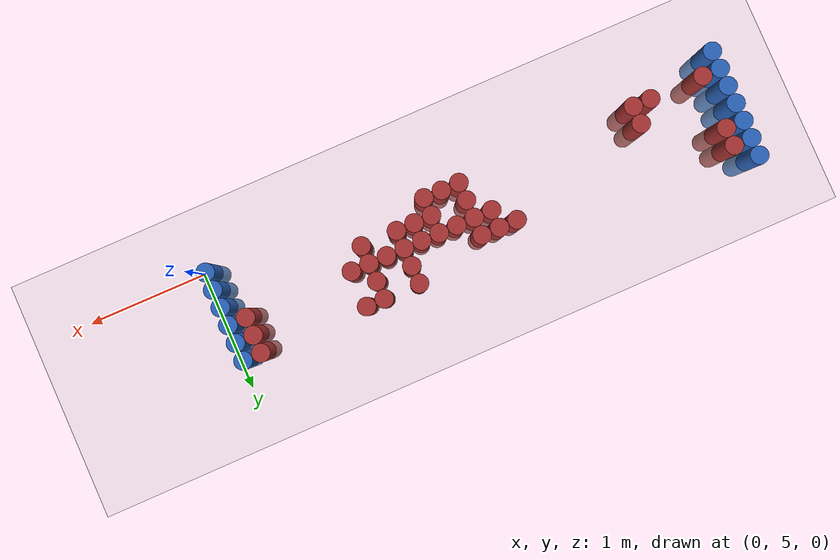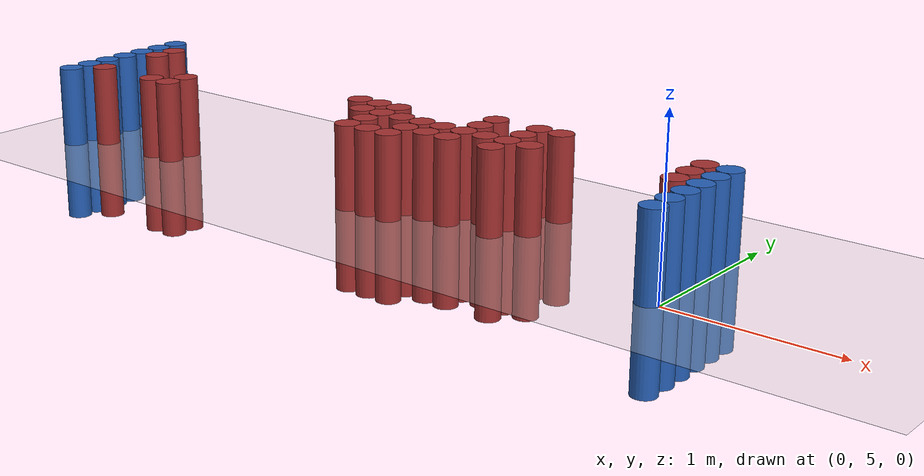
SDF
<sdf version="1.6">
 <world name="default">
  <model name="ground_plane">
   <static>1</static>
   <link name="link">
    <collision name="collision">
     <geometry><plane><normal>0 0 1</normal><size>100 100</size></plane></geometry>
     <surface><friction><ode><mu>100</mu><mu2>50</mu2></ode></friction></surface>
    </collision>
    <visual name="visual">
     <cast_shadows>0</cast_shadows>
     <geometry><plane><normal>0 0 1</normal><size>100 100</size></plane></geometry>
     <material>
      <script><uri>file://media/materials/scripts/gazebo.material</uri><name>Gazebo/Grey</name></script>
     </material>
    </visual>
   </link>
  </model>
  <model name="unit_cylinder_94">
   <static>1</static>
   <pose>-0.075000 5.025000 0.000000 0.000000 0.000000 0.000000</pose>
   <link name="link">
    <inertial>
     <mass>1</mass>
     <inertia><ixx>0.145833</ixx><ixy>0</ixy><ixz>0</ixz><iyy>0.145833</iyy><iyz>0</iyz><izz>0.125</izz></inertia>
    </inertial>
    <collision name="collision">
     <geometry><cylinder><radius>0.075000</radius><length>1</length></cylinder></geometry>
    </collision>
    <visual name="visual">
     <geometry><cylinder><radius>0.075000</radius><length>1</length></cylinder></geometry>
     <material>
      <ambient>0.152000 0.379000 0.720000 1</ambient>
      <diffuse>0.152000 0.379000 0.720000 1</diffuse>
     </material>
     <material>
      <script><name>Gazebo/Grey</name><uri>file://media/materials/scripts/gazebo.material</uri></script>
     </material>
    </visual>
   </link>
  </model>
  <model name="unit_cylinder_95">
   <static>1</static>
   <pose>-4.425000 5.025000 0.000000 0.000000 0.000000 0.000000</pose>
   <link name="link">
    <inertial>
     <mass>1</mass>
     <inertia><ixx>0.145833</ixx><ixy>0</ixy><ixz>0</ixz><iyy>0.145833</iyy><iyz>0</iyz><izz>0.125</izz></inertia>
    </inertial>
    <collision name="collision">
     <geometry><cylinder><radius>0.075000</radius><length>1</length></cylinder></geometry>
    </collision>
    <visual name="visual">
     <geometry><cylinder><radius>0.075000</radius><length>1</length></cylinder></geometry>
     <material>
      <ambient>0.152000 0.379000 0.720000 1</ambient>
      <diffuse>0.152000 0.379000 0.720000 1</diffuse>
     </material>
     <material>
      <script><name>Gazebo/Grey</name><uri>file://media/materials/scripts/gazebo.material</uri></script>
     </material>
    </visual>
   </link>
  </model>
  <model name="unit_cylinder_96">
   <static>1</static>
   <pose>-4.425000 5.175000 0.000000 0.000000 0.000000 0.000000</pose>
   <link name="link">
    <inertial>
     <mass>1</mass>
     <inertia><ixx>0.145833</ixx><ixy>0</ixy><ixz>0</ixz><iyy>0.145833</iyy><iyz>0</iyz><izz>0.125</izz></inertia>
    </inertial>
    <collision name="collision">
     <geometry><cylinder><radius>0.075000</radius><length>1</length></cylinder></geometry>
    </collision>
    <visual name="visual">
     <geometry><cylinder><radius>0.075000</radius><length>1</length></cylinder></geometry>
     <material>
      <ambient>0.152000 0.379000 0.720000 1</ambient>
      <diffuse>0.152000 0.379000 0.720000 1</diffuse>
     </material>
     <material>
      <script><name>Gazebo/Grey</name><uri>file://media/materials/scripts/gazebo.material</uri></script>
     </material>
    </visual>
   </link>
  </model>
  <model name="unit_cylinder_97">
   <static>1</static>
   <pose>-4.425000 5.325000 0.000000 0.000000 0.000000 0.000000</pose>
   <link name="link">
    <inertial>
     <mass>1</mass>
     <inertia><ixx>0.145833</ixx><ixy>0</ixy><ixz>0</ixz><iyy>0.145833</iyy><iyz>0</iyz><izz>0.125</izz></inertia>
    </inertial>
    <collision name="collision">
     <geometry><cylinder><radius>0.075000</radius><length>1</length></cylinder></geometry>
    </collision>
    <visual name="visual">
     <geometry><cylinder><radius>0.075000</radius><length>1</length></cylinder></geometry>
     <material>
      <ambient>0.152000 0.379000 0.720000 1</ambient>
      <diffuse>0.152000 0.379000 0.720000 1</diffuse>
     </material>
     <material>
      <script><name>Gazebo/Grey</name><uri>file://media/materials/scripts/gazebo.material</uri></script>
     </material>
    </visual>
   </link>
  </model>
  <model name="unit_cylinder_98">
   <static>1</static>
   <pose>-4.425000 5.475000 0.000000 0.000000 0.000000 0.000000</pose>
   <link name="link">
    <inertial>
     <mass>1</mass>
     <inertia><ixx>0.145833</ixx><ixy>0</ixy><ixz>0</ixz><iyy>0.145833</iyy><iyz>0</iyz><izz>0.125</izz></inertia>
    </inertial>
    <collision name="collision">
     <geometry><cylinder><radius>0.075000</radius><length>1</length></cylinder></geometry>
    </collision>
    <visual name="visual">
     <geometry><cylinder><radius>0.075000</radius><length>1</length></cylinder></geometry>
     <material>
      <ambient>0.152000 0.379000 0.720000 1</ambient>
      <diffuse>0.152000 0.379000 0.720000 1</diffuse>
     </material>
     <material>
      <script><name>Gazebo/Grey</name><uri>file://media/materials/scripts/gazebo.material</uri></script>
     </material>
    </visual>
   </link>
  </model>
  <model name="unit_cylinder_99">
   <static>1</static>
   <pose>-4.425000 5.625000 0.000000 0.000000 0.000000 0.000000</pose>
   <link name="link">
    <inertial>
     <mass>1</mass>
     <inertia><ixx>0.145833</ixx><ixy>0</ixy><ixz>0</ixz><iyy>0.145833</iyy><iyz>0</iyz><izz>0.125</izz></inertia>
    </inertial>
    <collision name="collision">
     <geometry><cylinder><radius>0.075000</radius><length>1</length></cylinder></geometry>
    </collision>
    <visual name="visual">
     <geometry><cylinder><radius>0.075000</radius><length>1</length></cylinder></geometry>
     <material>
      <ambient>0.152000 0.379000 0.720000 1</ambient>
      <diffuse>0.152000 0.379000 0.720000 1</diffuse>
     </material>
     <material>
      <script><name>Gazebo/Grey</name><uri>file://media/materials/scripts/gazebo.material</uri></script>
     </material>
    </visual>
   </link>
  </model>
  <model name="unit_cylinder_100">
   <static>1</static>
   <pose>-4.425000 5.775000 0.000000 0.000000 0.000000 0.000000</pose>
   <link name="link">
    <inertial>
     <mass>1</mass>
     <inertia><ixx>0.145833</ixx><ixy>0</ixy><ixz>0</ixz><iyy>0.145833</iyy><iyz>0</iyz><izz>0.125</izz></inertia>
    </inertial>
    <collision name="collision">
     <geometry><cylinder><radius>0.075000</radius><length>1</length></cylinder></geometry>
    </collision>
    <visual name="visual">
     <geometry><cylinder><radius>0.075000</radius><length>1</length></cylinder></geometry>
     <material>
      <ambient>0.152000 0.379000 0.720000 1</ambient>
      <diffuse>0.152000 0.379000 0.720000 1</diffuse>
     </material>
     <material>
      <script><name>Gazebo/Grey</name><uri>file://media/materials/scripts/gazebo.material</uri></script>
     </material>
    </visual>
   </link>
  </model>
  <model name="unit_cylinder_101">
   <static>1</static>
   <pose>-4.425000 5.925000 0.000000 0.000000 0.000000 0.000000</pose>
   <link name="link">
    <inertial>
     <mass>1</mass>
     <inertia><ixx>0.145833</ixx><ixy>0</ixy><ixz>0</ixz><iyy>0.145833</iyy><iyz>0</iyz><izz>0.125</izz></inertia>
    </inertial>
    <collision name="collision">
     <geometry><cylinder><radius>0.075000</radius><length>1</length></cylinder></geometry>
    </collision>
    <visual name="visual">
     <geometry><cylinder><radius>0.075000</radius><length>1</length></cylinder></geometry>
     <material>
      <ambient>0.152000 0.379000 0.720000 1</ambient>
      <diffuse>0.152000 0.379000 0.720000 1</diffuse>
     </material>
     <material>
      <script><name>Gazebo/Grey</name><uri>file://media/materials/scripts/gazebo.material</uri></script>
     </material>
    </visual>
   </link>
  </model>
  <model name="unit_cylinder_126">
   <static>1</static>
   <pose>-4.275000 5.175000 0.000000 0.000000 0.000000 0.000000</pose>
   <link name="link">
    <inertial>
     <mass>1</mass>
     <inertia><ixx>0.145833</ixx><ixy>0</ixy><ixz>0</ixz><iyy>0.145833</iyy><iyz>0</iyz><izz>0.125</izz></inertia>
    </inertial>
    <collision name="collision">
     <geometry><cylinder><radius>0.075000</radius><length>1</length></cylinder></geometry>
    </collision>
    <visual name="visual">
     <geometry><cylinder><radius>0.075000</radius><length>1</length></cylinder></geometry>
     <material>
      <ambient>0.648000 0.192000 0.192000 1</ambient>
      <diffuse>0.648000 0.192000 0.192000 1</diffuse>
     </material>
     <material>
      <script><name>Gazebo/Grey</name><uri>file://media/materials/scripts/gazebo.material</uri></script>
     </material>
    </visual>
   </link>
  </model>
  <model name="unit_cylinder_127">
   <static>1</static>
   <pose>-4.275000 5.625000 0.000000 0.000000 0.000000 0.000000</pose>
   <link name="link">
    <inertial>
     <mass>1</mass>
     <inertia><ixx>0.145833</ixx><ixy>0</ixy><ixz>0</ixz><iyy>0.145833</iyy><iyz>0</iyz><izz>0.125</izz></inertia>
    </inertial>
    <collision name="collision">
     <geometry><cylinder><radius>0.075000</radius><length>1</length></cylinder></geometry>
    </collision>
    <visual name="visual">
     <geometry><cylinder><radius>0.075000</radius><length>1</length></cylinder></geometry>
     <material>
      <ambient>0.648000 0.192000 0.192000 1</ambient>
      <diffuse>0.648000 0.192000 0.192000 1</diffuse>
     </material>
     <material>
      <script><name>Gazebo/Grey</name><uri>file://media/materials/scripts/gazebo.material</uri></script>
     </material>
    </visual>
   </link>
  </model>
  <model name="unit_cylinder_128">
   <static>1</static>
   <pose>-4.275000 5.775000 0.000000 0.000000 0.000000 0.000000</pose>
   <link name="link">
    <inertial>
     <mass>1</mass>
     <inertia><ixx>0.145833</ixx><ixy>0</ixy><ixz>0</ixz><iyy>0.145833</iyy><iyz>0</iyz><izz>0.125</izz></inertia>
    </inertial>
    <collision name="collision">
     <geometry><cylinder><radius>0.075000</radius><length>1</length></cylinder></geometry>
    </collision>
    <visual name="visual">
     <geometry><cylinder><radius>0.075000</radius><length>1</length></cylinder></geometry>
     <material>
      <ambient>0.648000 0.192000 0.192000 1</ambient>
      <diffuse>0.648000 0.192000 0.192000 1</diffuse>
     </material>
     <material>
      <script><name>Gazebo/Grey</name><uri>file://media/materials/scripts/gazebo.material</uri></script>
     </material>
    </visual>
   </link>
  </model>
  <model name="unit_cylinder_158">
   <static>1</static>
   <pose>-3.825000 5.175000 0.000000 0.000000 0.000000 0.000000</pose>
   <link name="link">
    <inertial>
     <mass>1</mass>
     <inertia><ixx>0.145833</ixx><ixy>0</ixy><ixz>0</ixz><iyy>0.145833</iyy><iyz>0</iyz><izz>0.125</izz></inertia>
    </inertial>
    <collision name="collision">
     <geometry><cylinder><radius>0.075000</radius><length>1</length></cylinder></geometry>
    </collision>
    <visual name="visual">
     <geometry><cylinder><radius>0.075000</radius><length>1</length></cylinder></geometry>
     <material>
      <ambient>0.648000 0.192000 0.192000 1</ambient>
      <diffuse>0.648000 0.192000 0.192000 1</diffuse>
     </material>
     <material>
      <script><name>Gazebo/Grey</name><uri>file://media/materials/scripts/gazebo.material</uri></script>
     </material>
    </visual>
   </link>
  </model>
  <model name="unit_cylinder_162">
   <static>1</static>
   <pose>-3.675000 5.175000 0.000000 0.000000 0.000000 0.000000</pose>
   <link name="link">
    <inertial>
     <mass>1</mass>
     <inertia><ixx>0.145833</ixx><ixy>0</ixy><ixz>0</ixz><iyy>0.145833</iyy><iyz>0</iyz><izz>0.125</izz></inertia>
    </inertial>
    <collision name="collision">
     <geometry><cylinder><radius>0.075000</radius><length>1</length></cylinder></geometry>
    </collision>
    <visual name="visual">
     <geometry><cylinder><radius>0.075000</radius><length>1</length></cylinder></geometry>
     <material>
      <ambient>0.648000 0.192000 0.192000 1</ambient>
      <diffuse>0.648000 0.192000 0.192000 1</diffuse>
     </material>
     <material>
      <script><name>Gazebo/Grey</name><uri>file://media/materials/scripts/gazebo.material</uri></script>
     </material>
    </visual>
   </link>
  </model>
  <model name="unit_cylinder_163">
   <static>1</static>
   <pose>-3.675000 5.325000 0.000000 0.000000 0.000000 0.000000</pose>
   <link name="link">
    <inertial>
     <mass>1</mass>
     <inertia><ixx>0.145833</ixx><ixy>0</ixy><ixz>0</ixz><iyy>0.145833</iyy><iyz>0</iyz><izz>0.125</izz></inertia>
    </inertial>
    <collision name="collision">
     <geometry><cylinder><radius>0.075000</radius><length>1</length></cylinder></geometry>
    </collision>
    <visual name="visual">
     <geometry><cylinder><radius>0.075000</radius><length>1</length></cylinder></geometry>
     <material>
      <ambient>0.648000 0.192000 0.192000 1</ambient>
      <diffuse>0.648000 0.192000 0.192000 1</diffuse>
     </material>
     <material>
      <script><name>Gazebo/Grey</name><uri>file://media/materials/scripts/gazebo.material</uri></script>
     </material>
    </visual>
   </link>
  </model>
  <model name="unit_cylinder_171">
   <static>1</static>
   <pose>-2.475000 5.625000 0.000000 0.000000 0.000000 0.000000</pose>
   <link name="link">
    <inertial>
     <mass>1</mass>
     <inertia><ixx>0.145833</ixx><ixy>0</ixy><ixz>0</ixz><iyy>0.145833</iyy><iyz>0</iyz><izz>0.125</izz></inertia>
    </inertial>
    <collision name="collision">
     <geometry><cylinder><radius>0.075000</radius><length>1</length></cylinder></geometry>
    </collision>
    <visual name="visual">
     <geometry><cylinder><radius>0.075000</radius><length>1</length></cylinder></geometry>
     <material>
      <ambient>0.648000 0.192000 0.192000 1</ambient>
      <diffuse>0.648000 0.192000 0.192000 1</diffuse>
     </material>
     <material>
      <script><name>Gazebo/Grey</name><uri>file://media/materials/scripts/gazebo.material</uri></script>
     </material>
    </visual>
   </link>
  </model>
  <model name="unit_cylinder_174">
   <static>1</static>
   <pose>-2.325000 5.475000 0.000000 0.000000 0.000000 0.000000</pose>
   <link name="link">
    <inertial>
     <mass>1</mass>
     <inertia><ixx>0.145833</ixx><ixy>0</ixy><ixz>0</ixz><iyy>0.145833</iyy><iyz>0</iyz><izz>0.125</izz></inertia>
    </inertial>
    <collision name="collision">
     <geometry><cylinder><radius>0.075000</radius><length>1</length></cylinder></geometry>
    </collision>
    <visual name="visual">
     <geometry><cylinder><radius>0.075000</radius><length>1</length></cylinder></geometry>
     <material>
      <ambient>0.648000 0.192000 0.192000 1</ambient>
      <diffuse>0.648000 0.192000 0.192000 1</diffuse>
     </material>
     <material>
      <script><name>Gazebo/Grey</name><uri>file://media/materials/scripts/gazebo.material</uri></script>
     </material>
    </visual>
   </link>
  </model>
  <model name="unit_cylinder_175">
   <static>1</static>
   <pose>-2.325000 5.625000 0.000000 0.000000 0.000000 0.000000</pose>
   <link name="link">
    <inertial>
     <mass>1</mass>
     <inertia><ixx>0.145833</ixx><ixy>0</ixy><ixz>0</ixz><iyy>0.145833</iyy><iyz>0</iyz><izz>0.125</izz></inertia>
    </inertial>
    <collision name="collision">
     <geometry><cylinder><radius>0.075000</radius><length>1</length></cylinder></geometry>
    </collision>
    <visual name="visual">
     <geometry><cylinder><radius>0.075000</radius><length>1</length></cylinder></geometry>
     <material>
      <ambient>0.648000 0.192000 0.192000 1</ambient>
      <diffuse>0.648000 0.192000 0.192000 1</diffuse>
     </material>
     <material>
      <script><name>Gazebo/Grey</name><uri>file://media/materials/scripts/gazebo.material</uri></script>
     </material>
    </visual>
   </link>
  </model>
  <model name="unit_cylinder_176">
   <static>1</static>
   <pose>-2.175000 5.175000 0.000000 0.000000 0.000000 0.000000</pose>
   <link name="link">
    <inertial>
     <mass>1</mass>
     <inertia><ixx>0.145833</ixx><ixy>0</ixy><ixz>0</ixz><iyy>0.145833</iyy><iyz>0</iyz><izz>0.125</izz></inertia>
    </inertial>
    <collision name="collision">
     <geometry><cylinder><radius>0.075000</radius><length>1</length></cylinder></geometry>
    </collision>
    <visual name="visual">
     <geometry><cylinder><radius>0.075000</radius><length>1</length></cylinder></geometry>
     <material>
      <ambient>0.648000 0.192000 0.192000 1</ambient>
      <diffuse>0.648000 0.192000 0.192000 1</diffuse>
     </material>
     <material>
      <script><name>Gazebo/Grey</name><uri>file://media/materials/scripts/gazebo.material</uri></script>
     </material>
    </visual>
   </link>
  </model>
  <model name="unit_cylinder_177">
   <static>1</static>
   <pose>-2.175000 5.325000 0.000000 0.000000 0.000000 0.000000</pose>
   <link name="link">
    <inertial>
     <mass>1</mass>
     <inertia><ixx>0.145833</ixx><ixy>0</ixy><ixz>0</ixz><iyy>0.145833</iyy><iyz>0</iyz><izz>0.125</izz></inertia>
    </inertial>
    <collision name="collision">
     <geometry><cylinder><radius>0.075000</radius><length>1</length></cylinder></geometry>
    </collision>
    <visual name="visual">
     <geometry><cylinder><radius>0.075000</radius><length>1</length></cylinder></geometry>
     <material>
      <ambient>0.648000 0.192000 0.192000 1</ambient>
      <diffuse>0.648000 0.192000 0.192000 1</diffuse>
     </material>
     <material>
      <script><name>Gazebo/Grey</name><uri>file://media/materials/scripts/gazebo.material</uri></script>
     </material>
    </visual>
   </link>
  </model>
  <model name="unit_cylinder_178">
   <static>1</static>
   <pose>-2.175000 5.475000 0.000000 0.000000 0.000000 0.000000</pose>
   <link name="link">
    <inertial>
     <mass>1</mass>
     <inertia><ixx>0.145833</ixx><ixy>0</ixy><ixz>0</ixz><iyy>0.145833</iyy><iyz>0</iyz><izz>0.125</izz></inertia>
    </inertial>
    <collision name="collision">
     <geometry><cylinder><radius>0.075000</radius><length>1</length></cylinder></geometry>
    </collision>
    <visual name="visual">
     <geometry><cylinder><radius>0.075000</radius><length>1</length></cylinder></geometry>
     <material>
      <ambient>0.648000 0.192000 0.192000 1</ambient>
      <diffuse>0.648000 0.192000 0.192000 1</diffuse>
     </material>
     <material>
      <script><name>Gazebo/Grey</name><uri>file://media/materials/scripts/gazebo.material</uri></script>
     </material>
    </visual>
   </link>
  </model>
  <model name="unit_cylinder_179">
   <static>1</static>
   <pose>-2.175000 5.625000 0.000000 0.000000 0.000000 0.000000</pose>
   <link name="link">
    <inertial>
     <mass>1</mass>
     <inertia><ixx>0.145833</ixx><ixy>0</ixy><ixz>0</ixz><iyy>0.145833</iyy><iyz>0</iyz><izz>0.125</izz></inertia>
    </inertial>
    <collision name="collision">
     <geometry><cylinder><radius>0.075000</radius><length>1</length></cylinder></geometry>
    </collision>
    <visual name="visual">
     <geometry><cylinder><radius>0.075000</radius><length>1</length></cylinder></geometry>
     <material>
      <ambient>0.648000 0.192000 0.192000 1</ambient>
      <diffuse>0.648000 0.192000 0.192000 1</diffuse>
     </material>
     <material>
      <script><name>Gazebo/Grey</name><uri>file://media/materials/scripts/gazebo.material</uri></script>
     </material>
    </visual>
   </link>
  </model>
  <model name="unit_cylinder_182">
   <static>1</static>
   <pose>-2.025000 5.175000 0.000000 0.000000 0.000000 0.000000</pose>
   <link name="link">
    <inertial>
     <mass>1</mass>
     <inertia><ixx>0.145833</ixx><ixy>0</ixy><ixz>0</ixz><iyy>0.145833</iyy><iyz>0</iyz><izz>0.125</izz></inertia>
    </inertial>
    <collision name="collision">
     <geometry><cylinder><radius>0.075000</radius><length>1</length></cylinder></geometry>
    </collision>
    <visual name="visual">
     <geometry><cylinder><radius>0.075000</radius><length>1</length></cylinder></geometry>
     <material>
      <ambient>0.648000 0.192000 0.192000 1</ambient>
      <diffuse>0.648000 0.192000 0.192000 1</diffuse>
     </material>
     <material>
      <script><name>Gazebo/Grey</name><uri>file://media/materials/scripts/gazebo.material</uri></script>
     </material>
    </visual>
   </link>
  </model>
  <model name="unit_cylinder_183">
   <static>1</static>
   <pose>-2.025000 5.475000 0.000000 0.000000 0.000000 0.000000</pose>
   <link name="link">
    <inertial>
     <mass>1</mass>
     <inertia><ixx>0.145833</ixx><ixy>0</ixy><ixz>0</ixz><iyy>0.145833</iyy><iyz>0</iyz><izz>0.125</izz></inertia>
    </inertial>
    <collision name="collision">
     <geometry><cylinder><radius>0.075000</radius><length>1</length></cylinder></geometry>
    </collision>
    <visual name="visual">
     <geometry><cylinder><radius>0.075000</radius><length>1</length></cylinder></geometry>
     <material>
      <ambient>0.648000 0.192000 0.192000 1</ambient>
      <diffuse>0.648000 0.192000 0.192000 1</diffuse>
     </material>
     <material>
      <script><name>Gazebo/Grey</name><uri>file://media/materials/scripts/gazebo.material</uri></script>
     </material>
    </visual>
   </link>
  </model>
  <model name="unit_cylinder_188">
   <static>1</static>
   <pose>-1.875000 5.175000 0.000000 0.000000 0.000000 0.000000</pose>
   <link name="link">
    <inertial>
     <mass>1</mass>
     <inertia><ixx>0.145833</ixx><ixy>0</ixy><ixz>0</ixz><iyy>0.145833</iyy><iyz>0</iyz><izz>0.125</izz></inertia>
    </inertial>
    <collision name="collision">
     <geometry><cylinder><radius>0.075000</radius><length>1</length></cylinder></geometry>
    </collision>
    <visual name="visual">
     <geometry><cylinder><radius>0.075000</radius><length>1</length></cylinder></geometry>
     <material>
      <ambient>0.648000 0.192000 0.192000 1</ambient>
      <diffuse>0.648000 0.192000 0.192000 1</diffuse>
     </material>
     <material>
      <script><name>Gazebo/Grey</name><uri>file://media/materials/scripts/gazebo.material</uri></script>
     </material>
    </visual>
   </link>
  </model>
  <model name="unit_cylinder_189">
   <static>1</static>
   <pose>-1.875000 5.325000 0.000000 0.000000 0.000000 0.000000</pose>
   <link name="link">
    <inertial>
     <mass>1</mass>
     <inertia><ixx>0.145833</ixx><ixy>0</ixy><ixz>0</ixz><iyy>0.145833</iyy><iyz>0</iyz><izz>0.125</izz></inertia>
    </inertial>
    <collision name="collision">
     <geometry><cylinder><radius>0.075000</radius><length>1</length></cylinder></geometry>
    </collision>
    <visual name="visual">
     <geometry><cylinder><radius>0.075000</radius><length>1</length></cylinder></geometry>
     <material>
      <ambient>0.648000 0.192000 0.192000 1</ambient>
      <diffuse>0.648000 0.192000 0.192000 1</diffuse>
     </material>
     <material>
      <script><name>Gazebo/Grey</name><uri>file://media/materials/scripts/gazebo.material</uri></script>
     </material>
    </visual>
   </link>
  </model>
  <model name="unit_cylinder_190">
   <static>1</static>
   <pose>-1.875000 5.475000 0.000000 0.000000 0.000000 0.000000</pose>
   <link name="link">
    <inertial>
     <mass>1</mass>
     <inertia><ixx>0.145833</ixx><ixy>0</ixy><ixz>0</ixz><iyy>0.145833</iyy><iyz>0</iyz><izz>0.125</izz></inertia>
    </inertial>
    <collision name="collision">
     <geometry><cylinder><radius>0.075000</radius><length>1</length></cylinder></geometry>
    </collision>
    <visual name="visual">
     <geometry><cylinder><radius>0.075000</radius><length>1</length></cylinder></geometry>
     <material>
      <ambient>0.648000 0.192000 0.192000 1</ambient>
      <diffuse>0.648000 0.192000 0.192000 1</diffuse>
     </material>
     <material>
      <script><name>Gazebo/Grey</name><uri>file://media/materials/scripts/gazebo.material</uri></script>
     </material>
    </visual>
   </link>
  </model>
  <model name="unit_cylinder_195">
   <static>1</static>
   <pose>-1.725000 5.325000 0.000000 0.000000 0.000000 0.000000</pose>
   <link name="link">
    <inertial>
     <mass>1</mass>
     <inertia><ixx>0.145833</ixx><ixy>0</ixy><ixz>0</ixz><iyy>0.145833</iyy><iyz>0</iyz><izz>0.125</izz></inertia>
    </inertial>
    <collision name="collision">
     <geometry><cylinder><radius>0.075000</radius><length>1</length></cylinder></geometry>
    </collision>
    <visual name="visual">
     <geometry><cylinder><radius>0.075000</radius><length>1</length></cylinder></geometry>
     <material>
      <ambient>0.648000 0.192000 0.192000 1</ambient>
      <diffuse>0.648000 0.192000 0.192000 1</diffuse>
     </material>
     <material>
      <script><name>Gazebo/Grey</name><uri>file://media/materials/scripts/gazebo.material</uri></script>
     </material>
    </visual>
   </link>
  </model>
  <model name="unit_cylinder_196">
   <static>1</static>
   <pose>-1.725000 5.475000 0.000000 0.000000 0.000000 0.000000</pose>
   <link name="link">
    <inertial>
     <mass>1</mass>
     <inertia><ixx>0.145833</ixx><ixy>0</ixy><ixz>0</ixz><iyy>0.145833</iyy><iyz>0</iyz><izz>0.125</izz></inertia>
    </inertial>
    <collision name="collision">
     <geometry><cylinder><radius>0.075000</radius><length>1</length></cylinder></geometry>
    </collision>
    <visual name="visual">
     <geometry><cylinder><radius>0.075000</radius><length>1</length></cylinder></geometry>
     <material>
      <ambient>0.648000 0.192000 0.192000 1</ambient>
      <diffuse>0.648000 0.192000 0.192000 1</diffuse>
     </material>
     <material>
      <script><name>Gazebo/Grey</name><uri>file://media/materials/scripts/gazebo.material</uri></script>
     </material>
    </visual>
   </link>
  </model>
  <model name="unit_cylinder_205">
   <static>1</static>
   <pose>-1.575000 5.325000 0.000000 0.000000 0.000000 0.000000</pose>
   <link name="link">
    <inertial>
     <mass>1</mass>
     <inertia><ixx>0.145833</ixx><ixy>0</ixy><ixz>0</ixz><iyy>0.145833</iyy><iyz>0</iyz><izz>0.125</izz></inertia>
    </inertial>
    <collision name="collision">
     <geometry><cylinder><radius>0.075000</radius><length>1</length></cylinder></geometry>
    </collision>
    <visual name="visual">
     <geometry><cylinder><radius>0.075000</radius><length>1</length></cylinder></geometry>
     <material>
      <ambient>0.648000 0.192000 0.192000 1</ambient>
      <diffuse>0.648000 0.192000 0.192000 1</diffuse>
     </material>
     <material>
      <script><name>Gazebo/Grey</name><uri>file://media/materials/scripts/gazebo.material</uri></script>
     </material>
    </visual>
   </link>
  </model>
  <model name="unit_cylinder_206">
   <static>1</static>
   <pose>-1.575000 5.475000 0.000000 0.000000 0.000000 0.000000</pose>
   <link name="link">
    <inertial>
     <mass>1</mass>
     <inertia><ixx>0.145833</ixx><ixy>0</ixy><ixz>0</ixz><iyy>0.145833</iyy><iyz>0</iyz><izz>0.125</izz></inertia>
    </inertial>
    <collision name="collision">
     <geometry><cylinder><radius>0.075000</radius><length>1</length></cylinder></geometry>
    </collision>
    <visual name="visual">
     <geometry><cylinder><radius>0.075000</radius><length>1</length></cylinder></geometry>
     <material>
      <ambient>0.648000 0.192000 0.192000 1</ambient>
      <diffuse>0.648000 0.192000 0.192000 1</diffuse>
     </material>
     <material>
      <script><name>Gazebo/Grey</name><uri>file://media/materials/scripts/gazebo.material</uri></script>
     </material>
    </visual>
   </link>
  </model>
  <model name="unit_cylinder_207">
   <static>1</static>
   <pose>-1.575000 5.625000 0.000000 0.000000 0.000000 0.000000</pose>
   <link name="link">
    <inertial>
     <mass>1</mass>
     <inertia><ixx>0.145833</ixx><ixy>0</ixy><ixz>0</ixz><iyy>0.145833</iyy><iyz>0</iyz><izz>0.125</izz></inertia>
    </inertial>
    <collision name="collision">
     <geometry><cylinder><radius>0.075000</radius><length>1</length></cylinder></geometry>
    </collision>
    <visual name="visual">
     <geometry><cylinder><radius>0.075000</radius><length>1</length></cylinder></geometry>
     <material>
      <ambient>0.648000 0.192000 0.192000 1</ambient>
      <diffuse>0.648000 0.192000 0.192000 1</diffuse>
     </material>
     <material>
      <script><name>Gazebo/Grey</name><uri>file://media/materials/scripts/gazebo.material</uri></script>
     </material>
    </visual>
   </link>
  </model>
  <model name="unit_cylinder_208">
   <static>1</static>
   <pose>-1.575000 5.775000 0.000000 0.000000 0.000000 0.000000</pose>
   <link name="link">
    <inertial>
     <mass>1</mass>
     <inertia><ixx>0.145833</ixx><ixy>0</ixy><ixz>0</ixz><iyy>0.145833</iyy><iyz>0</iyz><izz>0.125</izz></inertia>
    </inertial>
    <collision name="collision">
     <geometry><cylinder><radius>0.075000</radius><length>1</length></cylinder></geometry>
    </collision>
    <visual name="visual">
     <geometry><cylinder><radius>0.075000</radius><length>1</length></cylinder></geometry>
     <material>
      <ambient>0.648000 0.192000 0.192000 1</ambient>
      <diffuse>0.648000 0.192000 0.192000 1</diffuse>
     </material>
     <material>
      <script><name>Gazebo/Grey</name><uri>file://media/materials/scripts/gazebo.material</uri></script>
     </material>
    </visual>
   </link>
  </model>
  <model name="unit_cylinder_223">
   <static>1</static>
   <pose>-1.425000 5.475000 0.000000 0.000000 0.000000 0.000000</pose>
   <link name="link">
    <inertial>
     <mass>1</mass>
     <inertia><ixx>0.145833</ixx><ixy>0</ixy><ixz>0</ixz><iyy>0.145833</iyy><iyz>0</iyz><izz>0.125</izz></inertia>
    </inertial>
    <collision name="collision">
     <geometry><cylinder><radius>0.075000</radius><length>1</length></cylinder></geometry>
    </collision>
    <visual name="visual">
     <geometry><cylinder><radius>0.075000</radius><length>1</length></cylinder></geometry>
     <material>
      <ambient>0.648000 0.192000 0.192000 1</ambient>
      <diffuse>0.648000 0.192000 0.192000 1</diffuse>
     </material>
     <material>
      <script><name>Gazebo/Grey</name><uri>file://media/materials/scripts/gazebo.material</uri></script>
     </material>
    </visual>
   </link>
  </model>
  <model name="unit_cylinder_235">
   <static>1</static>
   <pose>-1.275000 5.325000 0.000000 0.000000 0.000000 0.000000</pose>
   <link name="link">
    <inertial>
     <mass>1</mass>
     <inertia><ixx>0.145833</ixx><ixy>0</ixy><ixz>0</ixz><iyy>0.145833</iyy><iyz>0</iyz><izz>0.125</izz></inertia>
    </inertial>
    <collision name="collision">
     <geometry><cylinder><radius>0.075000</radius><length>1</length></cylinder></geometry>
    </collision>
    <visual name="visual">
     <geometry><cylinder><radius>0.075000</radius><length>1</length></cylinder></geometry>
     <material>
      <ambient>0.648000 0.192000 0.192000 1</ambient>
      <diffuse>0.648000 0.192000 0.192000 1</diffuse>
     </material>
     <material>
      <script><name>Gazebo/Grey</name><uri>file://media/materials/scripts/gazebo.material</uri></script>
     </material>
    </visual>
   </link>
  </model>
  <model name="unit_cylinder_236">
   <static>1</static>
   <pose>-1.275000 5.475000 0.000000 0.000000 0.000000 0.000000</pose>
   <link name="link">
    <inertial>
     <mass>1</mass>
     <inertia><ixx>0.145833</ixx><ixy>0</ixy><ixz>0</ixz><iyy>0.145833</iyy><iyz>0</iyz><izz>0.125</izz></inertia>
    </inertial>
    <collision name="collision">
     <geometry><cylinder><radius>0.075000</radius><length>1</length></cylinder></geometry>
    </collision>
    <visual name="visual">
     <geometry><cylinder><radius>0.075000</radius><length>1</length></cylinder></geometry>
     <material>
      <ambient>0.648000 0.192000 0.192000 1</ambient>
      <diffuse>0.648000 0.192000 0.192000 1</diffuse>
     </material>
     <material>
      <script><name>Gazebo/Grey</name><uri>file://media/materials/scripts/gazebo.material</uri></script>
     </material>
    </visual>
   </link>
  </model>
  <model name="unit_cylinder_237">
   <static>1</static>
   <pose>-1.275000 5.625000 0.000000 0.000000 0.000000 0.000000</pose>
   <link name="link">
    <inertial>
     <mass>1</mass>
     <inertia><ixx>0.145833</ixx><ixy>0</ixy><ixz>0</ixz><iyy>0.145833</iyy><iyz>0</iyz><izz>0.125</izz></inertia>
    </inertial>
    <collision name="collision">
     <geometry><cylinder><radius>0.075000</radius><length>1</length></cylinder></geometry>
    </collision>
    <visual name="visual">
     <geometry><cylinder><radius>0.075000</radius><length>1</length></cylinder></geometry>
     <material>
      <ambient>0.648000 0.192000 0.192000 1</ambient>
      <diffuse>0.648000 0.192000 0.192000 1</diffuse>
     </material>
     <material>
      <script><name>Gazebo/Grey</name><uri>file://media/materials/scripts/gazebo.material</uri></script>
     </material>
    </visual>
   </link>
  </model>
  <model name="unit_cylinder_238">
   <static>1</static>
   <pose>-1.275000 5.775000 0.000000 0.000000 0.000000 0.000000</pose>
   <link name="link">
    <inertial>
     <mass>1</mass>
     <inertia><ixx>0.145833</ixx><ixy>0</ixy><ixz>0</ixz><iyy>0.145833</iyy><iyz>0</iyz><izz>0.125</izz></inertia>
    </inertial>
    <collision name="collision">
     <geometry><cylinder><radius>0.075000</radius><length>1</length></cylinder></geometry>
    </collision>
    <visual name="visual">
     <geometry><cylinder><radius>0.075000</radius><length>1</length></cylinder></geometry>
     <material>
      <ambient>0.648000 0.192000 0.192000 1</ambient>
      <diffuse>0.648000 0.192000 0.192000 1</diffuse>
     </material>
     <material>
      <script><name>Gazebo/Grey</name><uri>file://media/materials/scripts/gazebo.material</uri></script>
     </material>
    </visual>
   </link>
  </model>
  <model name="unit_cylinder_248">
   <static>1</static>
   <pose>-1.125000 5.475000 0.000000 0.000000 0.000000 0.000000</pose>
   <link name="link">
    <inertial>
     <mass>1</mass>
     <inertia><ixx>0.145833</ixx><ixy>0</ixy><ixz>0</ixz><iyy>0.145833</iyy><iyz>0</iyz><izz>0.125</izz></inertia>
    </inertial>
    <collision name="collision">
     <geometry><cylinder><radius>0.075000</radius><length>1</length></cylinder></geometry>
    </collision>
    <visual name="visual">
     <geometry><cylinder><radius>0.075000</radius><length>1</length></cylinder></geometry>
     <material>
      <ambient>0.648000 0.192000 0.192000 1</ambient>
      <diffuse>0.648000 0.192000 0.192000 1</diffuse>
     </material>
     <material>
      <script><name>Gazebo/Grey</name><uri>file://media/materials/scripts/gazebo.material</uri></script>
     </material>
    </visual>
   </link>
  </model>
  <model name="unit_cylinder_249">
   <static>1</static>
   <pose>-1.125000 5.775000 0.000000 0.000000 0.000000 0.000000</pose>
   <link name="link">
    <inertial>
     <mass>1</mass>
     <inertia><ixx>0.145833</ixx><ixy>0</ixy><ixz>0</ixz><iyy>0.145833</iyy><iyz>0</iyz><izz>0.125</izz></inertia>
    </inertial>
    <collision name="collision">
     <geometry><cylinder><radius>0.075000</radius><length>1</length></cylinder></geometry>
    </collision>
    <visual name="visual">
     <geometry><cylinder><radius>0.075000</radius><length>1</length></cylinder></geometry>
     <material>
      <ambient>0.648000 0.192000 0.192000 1</ambient>
      <diffuse>0.648000 0.192000 0.192000 1</diffuse>
     </material>
     <material>
      <script><name>Gazebo/Grey</name><uri>file://media/materials/scripts/gazebo.material</uri></script>
     </material>
    </visual>
   </link>
  </model>
  <model name="unit_cylinder_282">
   <static>1</static>
   <pose>-0.225000 5.475000 0.000000 0.000000 0.000000 0.000000</pose>
   <link name="link">
    <inertial>
     <mass>1</mass>
     <inertia><ixx>0.145833</ixx><ixy>0</ixy><ixz>0</ixz><iyy>0.145833</iyy><iyz>0</iyz><izz>0.125</izz></inertia>
    </inertial>
    <collision name="collision">
     <geometry><cylinder><radius>0.075000</radius><length>1</length></cylinder></geometry>
    </collision>
    <visual name="visual">
     <geometry><cylinder><radius>0.075000</radius><length>1</length></cylinder></geometry>
     <material>
      <ambient>0.648000 0.192000 0.192000 1</ambient>
      <diffuse>0.648000 0.192000 0.192000 1</diffuse>
     </material>
     <material>
      <script><name>Gazebo/Grey</name><uri>file://media/materials/scripts/gazebo.material</uri></script>
     </material>
    </visual>
   </link>
  </model>
  <model name="unit_cylinder_283">
   <static>1</static>
   <pose>-0.225000 5.625000 0.000000 0.000000 0.000000 0.000000</pose>
   <link name="link">
    <inertial>
     <mass>1</mass>
     <inertia><ixx>0.145833</ixx><ixy>0</ixy><ixz>0</ixz><iyy>0.145833</iyy><iyz>0</iyz><izz>0.125</izz></inertia>
    </inertial>
    <collision name="collision">
     <geometry><cylinder><radius>0.075000</radius><length>1</length></cylinder></geometry>
    </collision>
    <visual name="visual">
     <geometry><cylinder><radius>0.075000</radius><length>1</length></cylinder></geometry>
     <material>
      <ambient>0.648000 0.192000 0.192000 1</ambient>
      <diffuse>0.648000 0.192000 0.192000 1</diffuse>
     </material>
     <material>
      <script><name>Gazebo/Grey</name><uri>file://media/materials/scripts/gazebo.material</uri></script>
     </material>
    </visual>
   </link>
  </model>
  <model name="unit_cylinder_284">
   <static>1</static>
   <pose>-0.225000 5.775000 0.000000 0.000000 0.000000 0.000000</pose>
   <link name="link">
    <inertial>
     <mass>1</mass>
     <inertia><ixx>0.145833</ixx><ixy>0</ixy><ixz>0</ixz><iyy>0.145833</iyy><iyz>0</iyz><izz>0.125</izz></inertia>
    </inertial>
    <collision name="collision">
     <geometry><cylinder><radius>0.075000</radius><length>1</length></cylinder></geometry>
    </collision>
    <visual name="visual">
     <geometry><cylinder><radius>0.075000</radius><length>1</length></cylinder></geometry>
     <material>
      <ambient>0.648000 0.192000 0.192000 1</ambient>
      <diffuse>0.648000 0.192000 0.192000 1</diffuse>
     </material>
     <material>
      <script><name>Gazebo/Grey</name><uri>file://media/materials/scripts/gazebo.material</uri></script>
     </material>
    </visual>
   </link>
  </model>
  <model name="unit_cylinder_301">
   <static>1</static>
   <pose>-0.075000 5.175000 0.000000 0.000000 0.000000 0.000000</pose>
   <link name="link">
    <inertial>
     <mass>1</mass>
     <inertia><ixx>0.145833</ixx><ixy>0</ixy><ixz>0</ixz><iyy>0.145833</iyy><iyz>0</iyz><izz>0.125</izz></inertia>
    </inertial>
    <collision name="collision">
     <geometry><cylinder><radius>0.075000</radius><length>1</length></cylinder></geometry>
    </collision>
    <visual name="visual">
     <geometry><cylinder><radius>0.075000</radius><length>1</length></cylinder></geometry>
     <material>
      <ambient>0.152000 0.379000 0.720000 1</ambient>
      <diffuse>0.152000 0.379000 0.720000 1</diffuse>
     </material>
     <material>
      <script><name>Gazebo/Grey</name><uri>file://media/materials/scripts/gazebo.material</uri></script>
     </material>
    </visual>
   </link>
  </model>
  <model name="unit_cylinder_302">
   <static>1</static>
   <pose>-0.075000 5.325000 0.000000 0.000000 0.000000 0.000000</pose>
   <link name="link">
    <inertial>
     <mass>1</mass>
     <inertia><ixx>0.145833</ixx><ixy>0</ixy><ixz>0</ixz><iyy>0.145833</iyy><iyz>0</iyz><izz>0.125</izz></inertia>
    </inertial>
    <collision name="collision">
     <geometry><cylinder><radius>0.075000</radius><length>1</length></cylinder></geometry>
    </collision>
    <visual name="visual">
     <geometry><cylinder><radius>0.075000</radius><length>1</length></cylinder></geometry>
     <material>
      <ambient>0.152000 0.379000 0.720000 1</ambient>
      <diffuse>0.152000 0.379000 0.720000 1</diffuse>
     </material>
     <material>
      <script><name>Gazebo/Grey</name><uri>file://media/materials/scripts/gazebo.material</uri></script>
     </material>
    </visual>
   </link>
  </model>
  <model name="unit_cylinder_303">
   <static>1</static>
   <pose>-0.075000 5.475000 0.000000 0.000000 0.000000 0.000000</pose>
   <link name="link">
    <inertial>
     <mass>1</mass>
     <inertia><ixx>0.145833</ixx><ixy>0</ixy><ixz>0</ixz><iyy>0.145833</iyy><iyz>0</iyz><izz>0.125</izz></inertia>
    </inertial>
    <collision name="collision">
     <geometry><cylinder><radius>0.075000</radius><length>1</length></cylinder></geometry>
    </collision>
    <visual name="visual">
     <geometry><cylinder><radius>0.075000</radius><length>1</length></cylinder></geometry>
     <material>
      <ambient>0.152000 0.379000 0.720000 1</ambient>
      <diffuse>0.152000 0.379000 0.720000 1</diffuse>
     </material>
     <material>
      <script><name>Gazebo/Grey</name><uri>file://media/materials/scripts/gazebo.material</uri></script>
     </material>
    </visual>
   </link>
  </model>
  <model name="unit_cylinder_304">
   <static>1</static>
   <pose>-0.075000 5.625000 0.000000 0.000000 0.000000 0.000000</pose>
   <link name="link">
    <inertial>
     <mass>1</mass>
     <inertia><ixx>0.145833</ixx><ixy>0</ixy><ixz>0</ixz><iyy>0.145833</iyy><iyz>0</iyz><izz>0.125</izz></inertia>
    </inertial>
    <collision name="collision">
     <geometry><cylinder><radius>0.075000</radius><length>1</length></cylinder></geometry>
    </collision>
    <visual name="visual">
     <geometry><cylinder><radius>0.075000</radius><length>1</length></cylinder></geometry>
     <material>
      <ambient>0.152000 0.379000 0.720000 1</ambient>
      <diffuse>0.152000 0.379000 0.720000 1</diffuse>
     </material>
     <material>
      <script><name>Gazebo/Grey</name><uri>file://media/materials/scripts/gazebo.material</uri></script>
     </material>
    </visual>
   </link>
  </model>
  <model name="unit_cylinder_305">
   <static>1</static>
   <pose>-0.075000 5.775000 0.000000 0.000000 0.000000 0.000000</pose>
   <link name="link">
    <inertial>
     <mass>1</mass>
     <inertia><ixx>0.145833</ixx><ixy>0</ixy><ixz>0</ixz><iyy>0.145833</iyy><iyz>0</iyz><izz>0.125</izz></inertia>
    </inertial>
    <collision name="collision">
     <geometry><cylinder><radius>0.075000</radius><length>1</length></cylinder></geometry>
    </collision>
    <visual name="visual">
     <geometry><cylinder><radius>0.075000</radius><length>1</length></cylinder></geometry>
     <material>
      <ambient>0.152000 0.379000 0.720000 1</ambient>
      <diffuse>0.152000 0.379000 0.720000 1</diffuse>
     </material>
     <material>
      <script><name>Gazebo/Grey</name><uri>file://media/materials/scripts/gazebo.material</uri></script>
     </material>
    </visual>
   </link>
  </model>
 </world>
</sdf>
